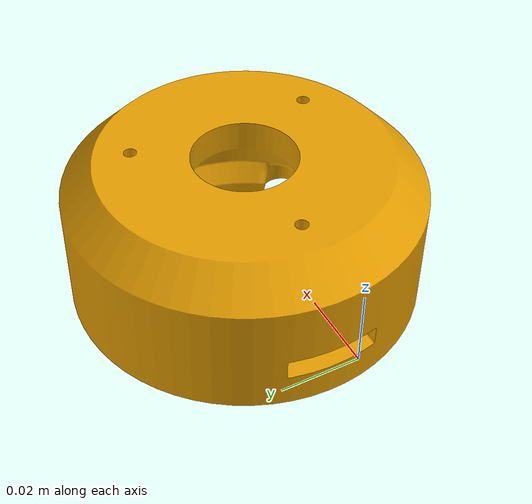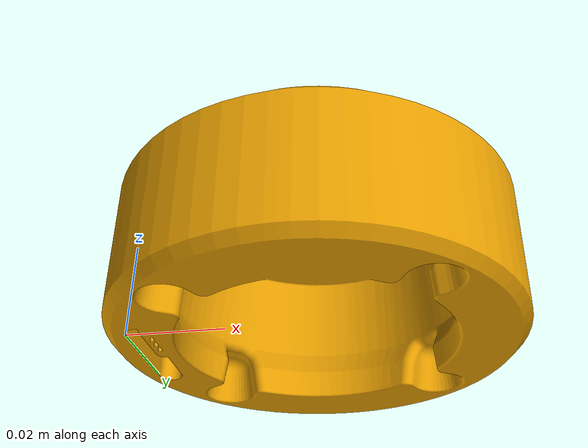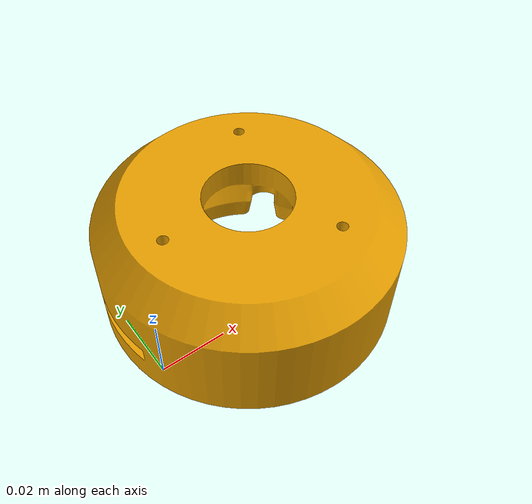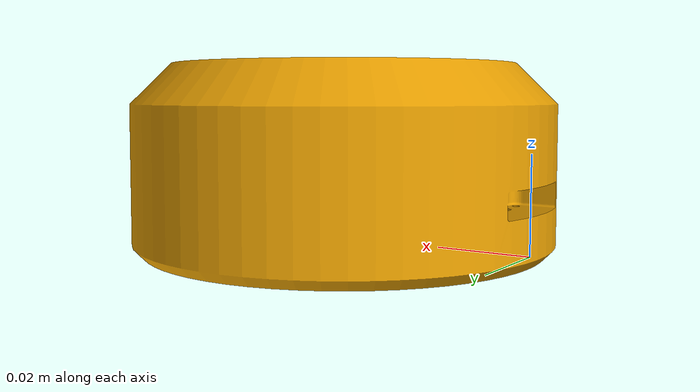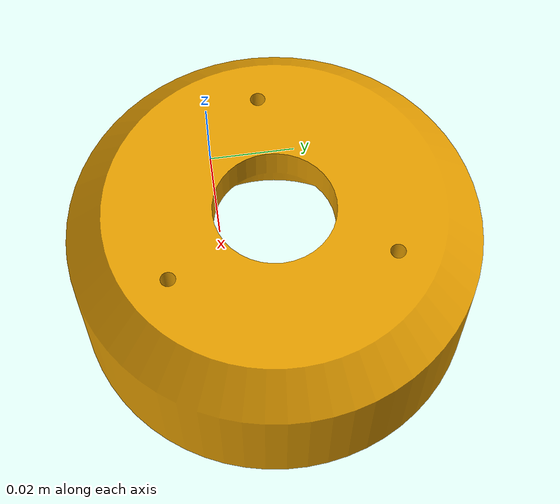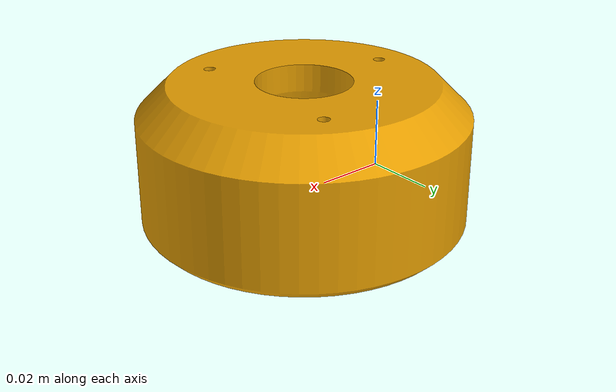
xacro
<?xml version="1.0" encoding="utf-8"?>
<robot xmlns:xacro="http://www.ros.org/wiki/xacro">

  <link name="tool_link">

    <inertial>
      <origin xyz="0 0 0"/>
      <mass value="0.5"/>
      <inertia
        ixx="0.0001"
        iyy="0.0001"
        izz="0.0001"
        ixy="0.0004"
        ixz="0.0004"
        iyz="0.0003"/>
    </inertial>

    <visual>
      <geometry>
        <mesh filename="package://sabry/meshes/mock_tool.stl"/>
      </geometry>
    </visual>

    <collision>
      <geometry>
        <mesh filename="package://sabry/meshes/mock_tool.stl"/>
      </geometry>
    </collision>

  </link>

</robot>
